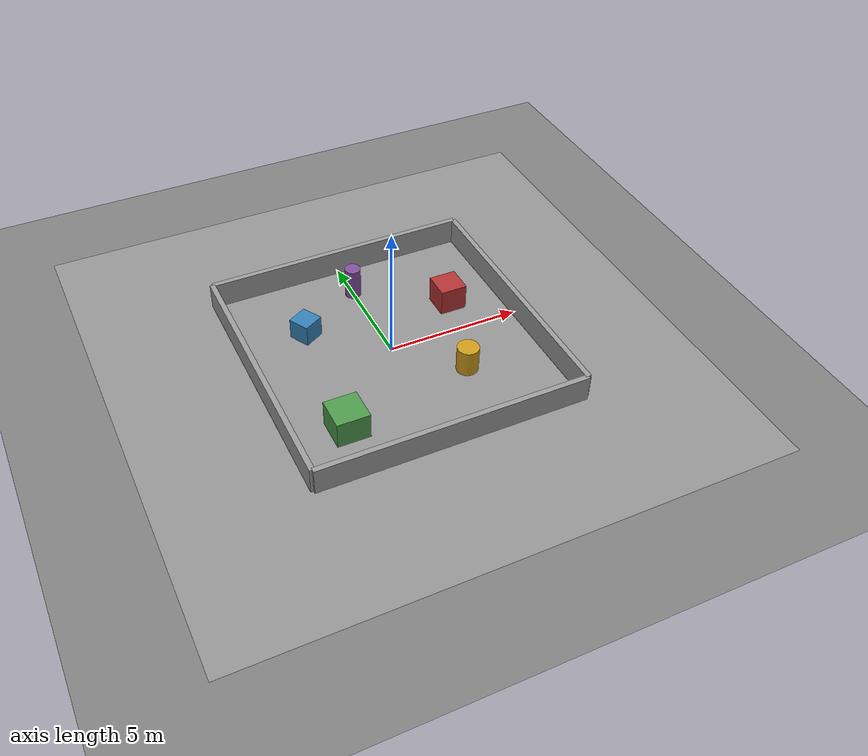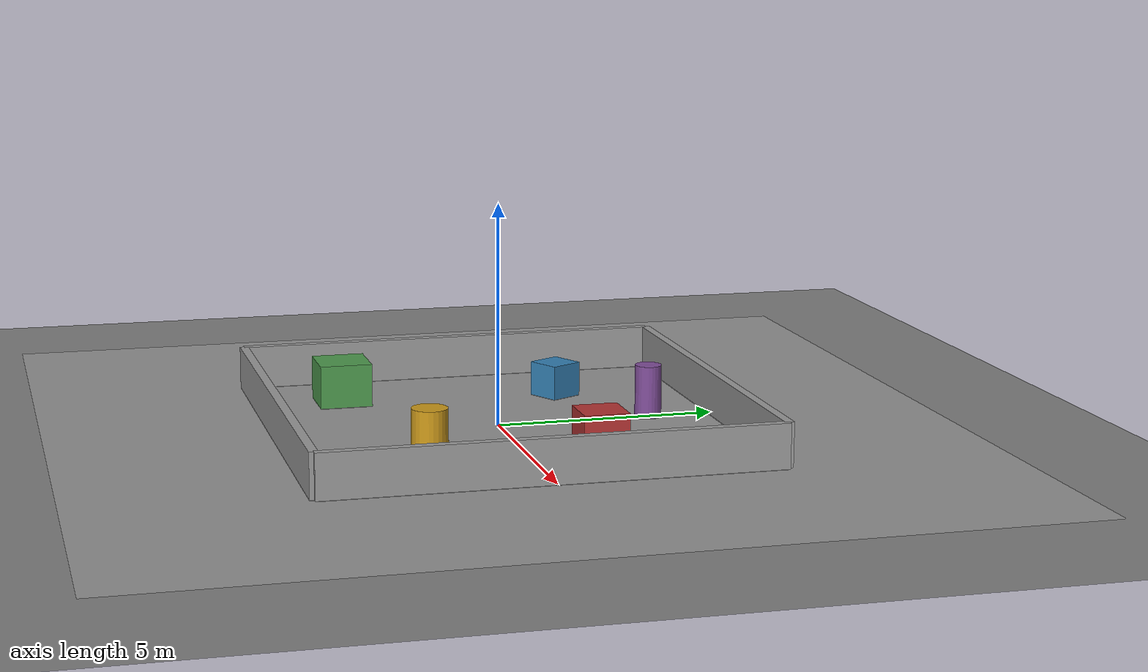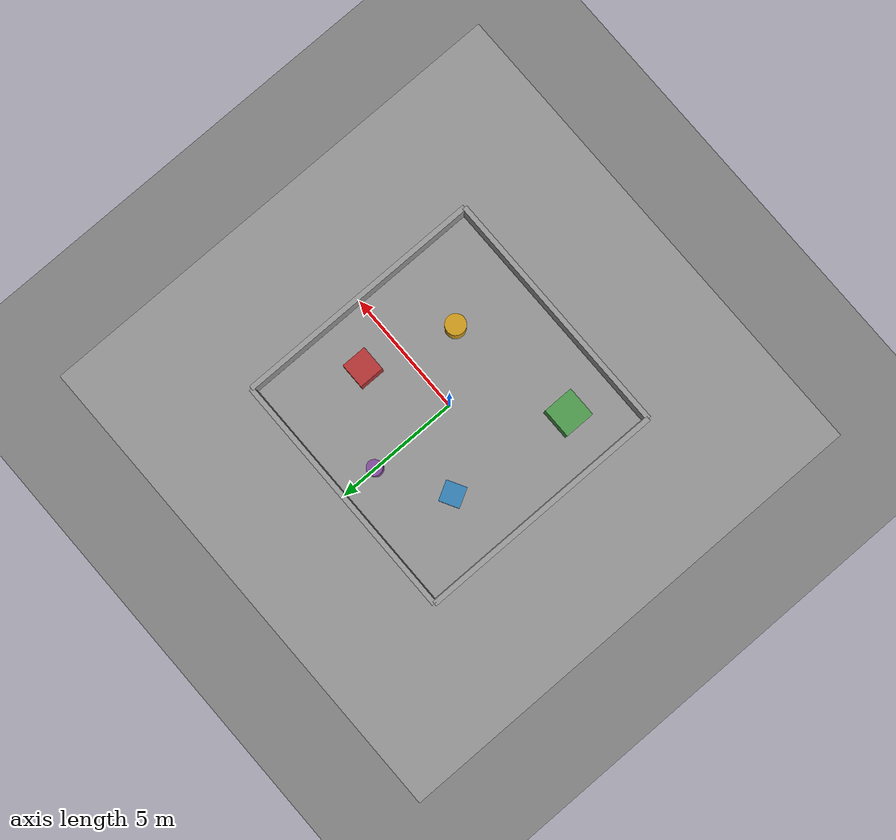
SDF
<?xml version="1.0" ?>
<sdf version="1.11">
  <world name="empty">
    <!-- Plugins -->
    <plugin
      filename="gz-sim-physics-system"
      name="gz::sim::systems::Physics"/>

    <plugin
      filename="gz-sim-user-commands-system"
      name="gz::sim::systems::UserCommands"/>

    <plugin
      filename="gz-sim-scene-broadcaster-system"
      name="gz::sim::systems::SceneBroadcaster"/>

    <!-- Lighting -->
    <light name="sun_light" type="directional">
      <pose>0 0 10 0 0 0</pose>
      <diffuse>1 1 1 1</diffuse>
      <specular>0.2 0.2 0.2 1</specular>
      <direction>-0.5 0.1 -0.9</direction>
    </light>

    <!-- Physics configuration -->
    <physics name="default" type="ode">
      <gravity>0 0 -9.81</gravity>
      <max_step_size>0.004</max_step_size>
      <real_time_factor>1.0</real_time_factor>
      <real_time_update_rate>250</real_time_update_rate>

      <!-- ODE solver settings -->
      <ode>
        <solver>
          <type>quick</type>
          <iters>50</iters>
          <sor>1.3</sor>
          <use_dynamic_moi_rescaling>false</use_dynamic_moi_rescaling>
        </solver>
        <constraints>
          <cfm>0.00001</cfm>
          <erp>0.2</erp>
          <contact_max_correcting_vel>0.1</contact_max_correcting_vel>
          <contact_surface_layer>0.001</contact_surface_layer>
        </constraints>
      </ode>
    </physics>

    <!-- Ground plane with torsional friction = 0 -->
    <model name="ground_plane">
      <static>true</static>
      <link name="link">
        <collision name="collision">
          <geometry>
            <plane>
              <normal>0 0 1</normal>
              <size>100 100</size>
            </plane>
          </geometry>
          <surface>
            <friction>
              <ode>
                <mu>50</mu>
                <mu2>50</mu2>
              </ode>
              <!-- CRITICAL: Set torsional friction to 0 for rotation -->
              <torsional>
                <ode>
                  <coefficient>0</coefficient>
                </ode>
              </torsional>
            </friction>
          </surface>
        </collision>
        <visual name="visual">
          <geometry>
            <plane>
              <normal>0 0 1</normal>
              <size>100 100</size>
            </plane>
          </geometry>
          <material>
            <ambient>0.5 0.5 0.5 1</ambient>
            <diffuse>0.5 0.5 0.5 1</diffuse>
            <specular>0 0 0 1</specular>
          </material>
        </visual>
      </link>
    </model>

    <!-- Rest of your models... -->
    <model name="grid">
      <static>true</static>
      <link name="link">
        <visual name="visual">
          <geometry>
            <plane>
              <normal>0 0 1</normal>
              <size>20 20</size>
            </plane>
          </geometry>
          <material>
            <ambient>0.8 0.8 0.8 0.3</ambient>
            <diffuse>0.8 0.8 0.8 0.3</diffuse>
            <specular>0 0 0 0</specular>
          </material>
        </visual>
      </link>
    </model>

    <!-- Scattered boxes -->
    <model name="box_1">
      <static>true</static>
      <pose>3 1.5 0.5 0 0 0</pose>
      <link name="link">
        <collision name="collision">
          <geometry><box><size>1 1 1</size></box></geometry>
        </collision>
        <visual name="visual">
          <geometry><box><size>1 1 1</size></box></geometry>
          <material>
            <ambient>0.7 0.2 0.2 1</ambient>
            <diffuse>0.7 0.2 0.2 1</diffuse>
          </material>
        </visual>
      </link>
    </model>

    <model name="box_2">
      <static>true</static>
      <pose>-2.5 2 0.4 0 0 0.5</pose>
      <link name="link">
        <collision name="collision">
          <geometry><box><size>0.8 0.8 0.8</size></box></geometry>
        </collision>
        <visual name="visual">
          <geometry><box><size>0.8 0.8 0.8</size></box></geometry>
          <material>
            <ambient>0.2 0.5 0.7 1</ambient>
            <diffuse>0.2 0.5 0.7 1</diffuse>
          </material>
        </visual>
      </link>
    </model>

    <model name="box_3">
      <static>true</static>
      <pose>-3 -3 0.5 0 0 0</pose>
      <link name="link">
        <collision name="collision">
          <geometry><box><size>1.2 1.2 1</size></box></geometry>
        </collision>
        <visual name="visual">
          <geometry><box><size>1.2 1.2 1</size></box></geometry>
          <material>
            <ambient>0.3 0.6 0.3 1</ambient>
            <diffuse>0.3 0.6 0.3 1</diffuse>
          </material>
        </visual>
      </link>
    </model>

    <!-- Scattered cylinders -->
    <model name="cylinder_1">
      <static>true</static>
      <pose>2 -2 0.5 0 0 0</pose>
      <link name="link">
        <collision name="collision">
          <geometry><cylinder><radius>0.4</radius><length>1.0</length></cylinder></geometry>
        </collision>
        <visual name="visual">
          <geometry><cylinder><radius>0.4</radius><length>1.0</length></cylinder></geometry>
          <material>
            <ambient>0.8 0.6 0.1 1</ambient>
            <diffuse>0.8 0.6 0.1 1</diffuse>
          </material>
        </visual>
      </link>
    </model>

    <model name="cylinder_2">
      <static>true</static>
      <pose>0 3.5 0.6 0 0 0</pose>
      <link name="link">
        <collision name="collision">
          <geometry><cylinder><radius>0.3</radius><length>1.2</length></cylinder></geometry>
        </collision>
        <visual name="visual">
          <geometry><cylinder><radius>0.3</radius><length>1.2</length></cylinder></geometry>
          <material>
            <ambient>0.5 0.3 0.6 1</ambient>
            <diffuse>0.5 0.3 0.6 1</diffuse>
          </material>
        </visual>
      </link>
    </model>

    <!-- Perimeter walls -->
    <model name="wall_north">
      <static>true</static>
      <pose>0 5 0.5 0 0 0</pose>
      <link name="link">
        <collision name="collision">
          <geometry><box><size>10 0.2 1</size></box></geometry>
        </collision>
        <visual name="visual">
          <geometry><box><size>10 0.2 1</size></box></geometry>
          <material>
            <ambient>0.6 0.6 0.6 1</ambient>
            <diffuse>0.6 0.6 0.6 1</diffuse>
          </material>
        </visual>
      </link>
    </model>

    <model name="wall_south">
      <static>true</static>
      <pose>0 -5 0.5 0 0 0</pose>
      <link name="link">
        <collision name="collision">
          <geometry><box><size>10 0.2 1</size></box></geometry>
        </collision>
        <visual name="visual">
          <geometry><box><size>10 0.2 1</size></box></geometry>
          <material>
            <ambient>0.6 0.6 0.6 1</ambient>
            <diffuse>0.6 0.6 0.6 1</diffuse>
          </material>
        </visual>
      </link>
    </model>

    <model name="wall_east">
      <static>true</static>
      <pose>5 0 0.5 0 0 1.5708</pose>
      <link name="link">
        <collision name="collision">
          <geometry><box><size>10 0.2 1</size></box></geometry>
        </collision>
        <visual name="visual">
          <geometry><box><size>10 0.2 1</size></box></geometry>
          <material>
            <ambient>0.6 0.6 0.6 1</ambient>
            <diffuse>0.6 0.6 0.6 1</diffuse>
          </material>
        </visual>
      </link>
    </model>

    <model name="wall_west">
      <static>true</static>
      <pose>-5 0 0.5 0 0 1.5708</pose>
      <link name="link">
        <collision name="collision">
          <geometry><box><size>10 0.2 1</size></box></geometry>
        </collision>
        <visual name="visual">
          <geometry><box><size>10 0.2 1</size></box></geometry>
          <material>
            <ambient>0.6 0.6 0.6 1</ambient>
            <diffuse>0.6 0.6 0.6 1</diffuse>
          </material>
        </visual>
      </link>
    </model>

  </world>
</sdf>
